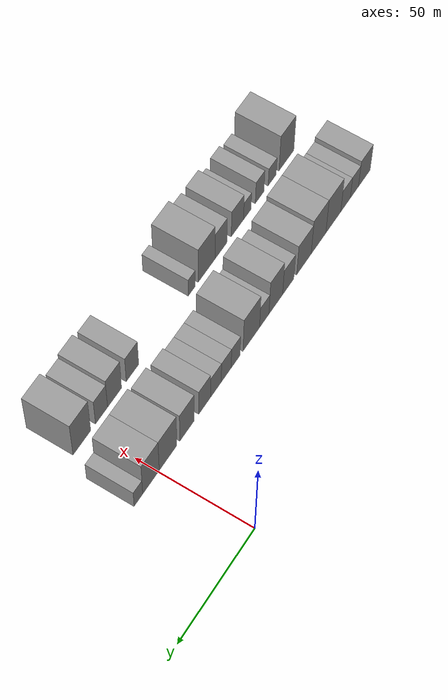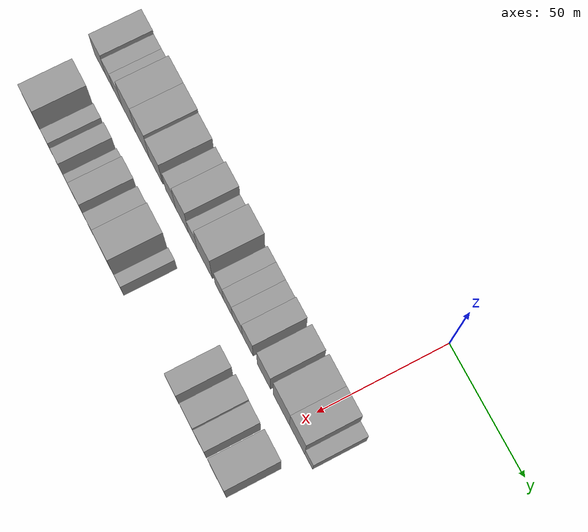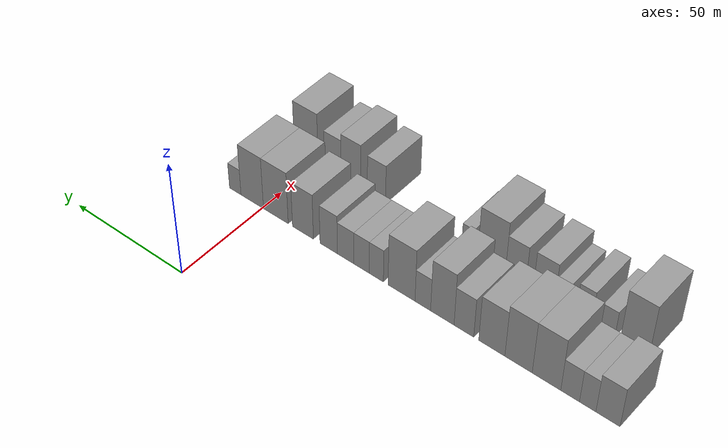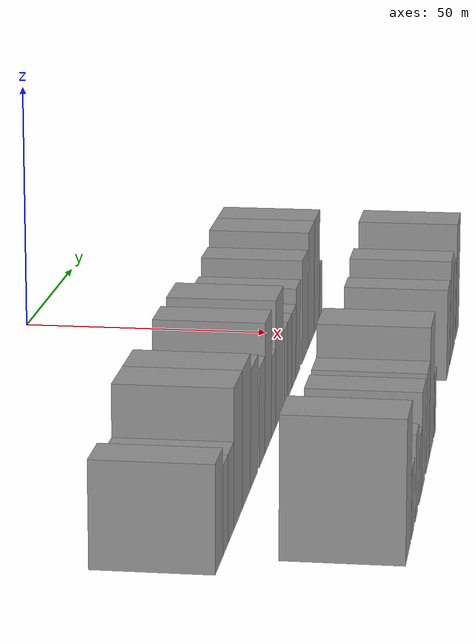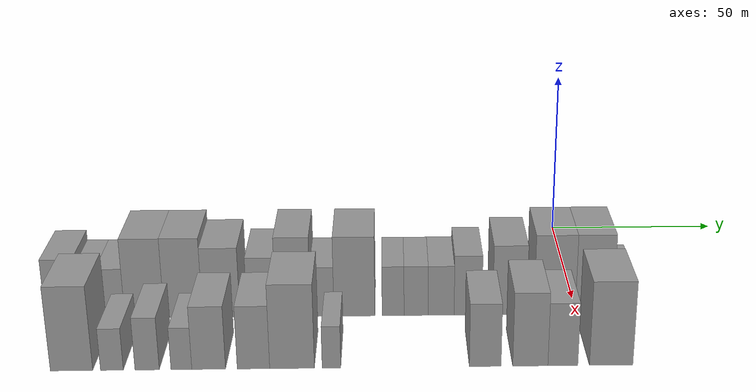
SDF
<sdf version="1.6">
 <world name="default">
  <model name="building_15">
   <static>1</static>
   <pose>50.0000 -143.0563 0 0.000000 0.000000 0.000000</pose>
   <link name="link">
    <pose>0 0 9.00 0 0 0</pose>
    <collision name="collision"><geometry><box><size>20.0000 8.8343 18.0000</size></box></geometry></collision>
    <visual name="visual">
     <cast_shadows>0</cast_shadows>
     <geometry><box><size>20.0000 8.8343 18.0000</size></box></geometry>
     <material>
      <script>
       <uri>model://grey_wall/materials/scripts</uri>
       <uri>model://grey_wall/materials/textures</uri>
       <name>vrc/grey_wall</name>
      </script>
     </material>
    </visual>
   </link>
  </model>
  <model name="building_16">
   <static>1</static>
   <pose>50.0000 -135.6108 0 0.000000 0.000000 0.000000</pose>
   <link name="link">
    <pose>0 0 7.50 0 0 0</pose>
    <collision name="collision"><geometry><box><size>20.0000 6.0568 15.0000</size></box></geometry></collision>
    <visual name="visual">
     <cast_shadows>0</cast_shadows>
     <geometry><box><size>20.0000 6.0568 15.0000</size></box></geometry>
     <material>
      <script>
       <uri>model://grey_wall/materials/scripts</uri>
       <uri>model://grey_wall/materials/textures</uri>
       <name>vrc/grey_wall</name>
      </script>
     </material>
    </visual>
   </link>
  </model>
  <model name="building_17">
   <static>1</static>
   <pose>50.0000 -129.0847 0 0.000000 0.000000 0.000000</pose>
   <link name="link">
    <pose>0 0 7.50 0 0 0</pose>
    <collision name="collision"><geometry><box><size>20.0000 6.9954 15.0000</size></box></geometry></collision>
    <visual name="visual">
     <cast_shadows>0</cast_shadows>
     <geometry><box><size>20.0000 6.9954 15.0000</size></box></geometry>
     <material>
      <script>
       <uri>model://grey_wall/materials/scripts</uri>
       <uri>model://grey_wall/materials/textures</uri>
       <name>vrc/grey_wall</name>
      </script>
     </material>
    </visual>
   </link>
  </model>
  <model name="building_18">
   <static>1</static>
   <pose>50.0000 -120.1459 0 0.000000 0.000000 0.000000</pose>
   <link name="link">
    <pose>0 0 12.00 0 0 0</pose>
    <collision name="collision"><geometry><box><size>20.0000 10.8822 24.0000</size></box></geometry></collision>
    <visual name="visual">
     <cast_shadows>0</cast_shadows>
     <geometry><box><size>20.0000 10.8822 24.0000</size></box></geometry>
     <material>
      <script>
       <uri>model://grey_wall/materials/scripts</uri>
       <uri>model://grey_wall/materials/textures</uri>
       <name>vrc/grey_wall</name>
      </script>
     </material>
    </visual>
   </link>
  </model>
  <model name="building_19">
   <static>1</static>
   <pose>50.0000 -109.3991 0 0.000000 0.000000 0.000000</pose>
   <link name="link">
    <pose>0 0 12.00 0 0 0</pose>
    <collision name="collision"><geometry><box><size>20.0000 10.6114 24.0000</size></box></geometry></collision>
    <visual name="visual">
     <cast_shadows>0</cast_shadows>
     <geometry><box><size>20.0000 10.6114 24.0000</size></box></geometry>
     <material>
      <script>
       <uri>model://grey_wall/materials/scripts</uri>
       <uri>model://grey_wall/materials/textures</uri>
       <name>vrc/grey_wall</name>
      </script>
     </material>
    </visual>
   </link>
  </model>
  <model name="building_20">
   <static>1</static>
   <pose>50.0000 -98.9195 0 0.000000 0.000000 0.000000</pose>
   <link name="link">
    <pose>0 0 10.50 0 0 0</pose>
    <collision name="collision"><geometry><box><size>20.0000 10.3479 21.0000</size></box></geometry></collision>
    <visual name="visual">
     <cast_shadows>0</cast_shadows>
     <geometry><box><size>20.0000 10.3479 21.0000</size></box></geometry>
     <material>
      <script>
       <uri>model://grey_wall/materials/scripts</uri>
       <uri>model://grey_wall/materials/textures</uri>
       <name>vrc/grey_wall</name>
      </script>
     </material>
    </visual>
   </link>
  </model>
  <model name="building_21">
   <static>1</static>
   <pose>50.0000 -87.7739 0 0.000000 0.000000 0.000000</pose>
   <link name="link">
    <pose>0 0 9.00 0 0 0</pose>
    <collision name="collision"><geometry><box><size>20.0000 7.9433 18.0000</size></box></geometry></collision>
    <visual name="visual">
     <cast_shadows>0</cast_shadows>
     <geometry><box><size>20.0000 7.9433 18.0000</size></box></geometry>
     <material>
      <script>
       <uri>model://grey_wall/materials/scripts</uri>
       <uri>model://grey_wall/materials/textures</uri>
       <name>vrc/grey_wall</name>
      </script>
     </material>
    </visual>
   </link>
  </model>
  <model name="building_22">
   <static>1</static>
   <pose>50.0000 -78.9859 0 0.000000 0.000000 0.000000</pose>
   <link name="link">
    <pose>0 0 12.00 0 0 0</pose>
    <collision name="collision"><geometry><box><size>20.0000 9.6326 24.0000</size></box></geometry></collision>
    <visual name="visual">
     <cast_shadows>0</cast_shadows>
     <geometry><box><size>20.0000 9.6326 24.0000</size></box></geometry>
     <material>
      <script>
       <uri>model://grey_wall/materials/scripts</uri>
       <uri>model://grey_wall/materials/textures</uri>
       <name>vrc/grey_wall</name>
      </script>
     </material>
    </visual>
   </link>
  </model>
  <model name="building_23">
   <static>1</static>
   <pose>50.0000 -70.9266 0 0.000000 0.000000 0.000000</pose>
   <link name="link">
    <pose>0 0 7.50 0 0 0</pose>
    <collision name="collision"><geometry><box><size>20.0000 6.4860 15.0000</size></box></geometry></collision>
    <visual name="visual">
     <cast_shadows>0</cast_shadows>
     <geometry><box><size>20.0000 6.4860 15.0000</size></box></geometry>
     <material>
      <script>
       <uri>model://grey_wall/materials/scripts</uri>
       <uri>model://grey_wall/materials/textures</uri>
       <name>vrc/grey_wall</name>
      </script>
     </material>
    </visual>
   </link>
  </model>
  <model name="building_24">
   <static>1</static>
   <pose>50.0000 -61.9832 0 0.000000 0.000000 0.000000</pose>
   <link name="link">
    <pose>0 0 12.00 0 0 0</pose>
    <collision name="collision"><geometry><box><size>20.0000 11.4007 24.0000</size></box></geometry></collision>
    <visual name="visual">
     <cast_shadows>0</cast_shadows>
     <geometry><box><size>20.0000 11.4007 24.0000</size></box></geometry>
     <material>
      <script>
       <uri>model://grey_wall/materials/scripts</uri>
       <uri>model://grey_wall/materials/textures</uri>
       <name>vrc/grey_wall</name>
      </script>
     </material>
    </visual>
   </link>
  </model>
  <model name="building_25">
   <static>1</static>
   <pose>50.0000 -51.2385 0 0.000000 0.000000 0.000000</pose>
   <link name="link">
    <pose>0 0 7.50 0 0 0</pose>
    <collision name="collision"><geometry><box><size>20.0000 6.0887 15.0000</size></box></geometry></collision>
    <visual name="visual">
     <cast_shadows>0</cast_shadows>
     <geometry><box><size>20.0000 6.0887 15.0000</size></box></geometry>
     <material>
      <script>
       <uri>model://grey_wall/materials/scripts</uri>
       <uri>model://grey_wall/materials/textures</uri>
       <name>vrc/grey_wall</name>
      </script>
     </material>
    </visual>
   </link>
  </model>
  <model name="building_26">
   <static>1</static>
   <pose>50.0000 -44.8371 0 0.000000 0.000000 0.000000</pose>
   <link name="link">
    <pose>0 0 7.50 0 0 0</pose>
    <collision name="collision"><geometry><box><size>20.0000 6.7143 15.0000</size></box></geometry></collision>
    <visual name="visual">
     <cast_shadows>0</cast_shadows>
     <geometry><box><size>20.0000 6.7143 15.0000</size></box></geometry>
     <material>
      <script>
       <uri>model://grey_wall/materials/scripts</uri>
       <uri>model://grey_wall/materials/textures</uri>
       <name>vrc/grey_wall</name>
      </script>
     </material>
    </visual>
   </link>
  </model>
  <model name="building_27">
   <static>1</static>
   <pose>50.0000 -37.8603 0 0.000000 0.000000 0.000000</pose>
   <link name="link">
    <pose>0 0 7.50 0 0 0</pose>
    <collision name="collision"><geometry><box><size>20.0000 7.2393 15.0000</size></box></geometry></collision>
    <visual name="visual">
     <cast_shadows>0</cast_shadows>
     <geometry><box><size>20.0000 7.2393 15.0000</size></box></geometry>
     <material>
      <script>
       <uri>model://grey_wall/materials/scripts</uri>
       <uri>model://grey_wall/materials/textures</uri>
       <name>vrc/grey_wall</name>
      </script>
     </material>
    </visual>
   </link>
  </model>
  <model name="building_28">
   <static>1</static>
   <pose>50.0000 -30.3558 0 0.000000 0.000000 0.000000</pose>
   <link name="link">
    <pose>0 0 9.00 0 0 0</pose>
    <collision name="collision"><geometry><box><size>20.0000 7.7696 18.0000</size></box></geometry></collision>
    <visual name="visual">
     <cast_shadows>0</cast_shadows>
     <geometry><box><size>20.0000 7.7696 18.0000</size></box></geometry>
     <material>
      <script>
       <uri>model://grey_wall/materials/scripts</uri>
       <uri>model://grey_wall/materials/textures</uri>
       <name>vrc/grey_wall</name>
      </script>
     </material>
    </visual>
   </link>
  </model>
  <model name="building_29">
   <static>1</static>
   <pose>50.0000 -18.7199 0 0.000000 0.000000 0.000000</pose>
   <link name="link">
    <pose>0 0 10.50 0 0 0</pose>
    <collision name="collision"><geometry><box><size>20.0000 9.5024 21.0000</size></box></geometry></collision>
    <visual name="visual">
     <cast_shadows>0</cast_shadows>
     <geometry><box><size>20.0000 9.5024 21.0000</size></box></geometry>
     <material>
      <script>
       <uri>model://grey_wall/materials/scripts</uri>
       <uri>model://grey_wall/materials/textures</uri>
       <name>vrc/grey_wall</name>
      </script>
     </material>
    </visual>
   </link>
  </model>
  <model name="building_30">
   <static>1</static>
   <pose>50.0000 -6.2122 0 0.000000 0.000000 0.000000</pose>
   <link name="link">
    <pose>0 0 12.00 0 0 0</pose>
    <collision name="collision"><geometry><box><size>20.0000 11.5130 24.0000</size></box></geometry></collision>
    <visual name="visual">
     <cast_shadows>0</cast_shadows>
     <geometry><box><size>20.0000 11.5130 24.0000</size></box></geometry>
     <material>
      <script>
       <uri>model://grey_wall/materials/scripts</uri>
       <uri>model://grey_wall/materials/textures</uri>
       <name>vrc/grey_wall</name>
      </script>
     </material>
    </visual>
   </link>
  </model>
  <model name="building_31">
   <static>1</static>
   <pose>50.0000 4.8688 0 0.000000 0.000000 0.000000</pose>
   <link name="link">
    <pose>0 0 12.00 0 0 0</pose>
    <collision name="collision"><geometry><box><size>20.0000 10.6490 24.0000</size></box></geometry></collision>
    <visual name="visual">
     <cast_shadows>0</cast_shadows>
     <geometry><box><size>20.0000 10.6490 24.0000</size></box></geometry>
     <material>
      <script>
       <uri>model://grey_wall/materials/scripts</uri>
       <uri>model://grey_wall/materials/textures</uri>
       <name>vrc/grey_wall</name>
      </script>
     </material>
    </visual>
   </link>
  </model>
  <model name="building_32">
   <static>1</static>
   <pose>50.0000 12.9377 0 0.000000 0.000000 0.000000</pose>
   <link name="link">
    <pose>0 0 6.00 0 0 0</pose>
    <collision name="collision"><geometry><box><size>20.0000 5.4888 12.0000</size></box></geometry></collision>
    <visual name="visual">
     <cast_shadows>0</cast_shadows>
     <geometry><box><size>20.0000 5.4888 12.0000</size></box></geometry>
     <material>
      <script>
       <uri>model://grey_wall/materials/scripts</uri>
       <uri>model://grey_wall/materials/textures</uri>
       <name>vrc/grey_wall</name>
      </script>
     </material>
    </visual>
   </link>
  </model>
  <model name="building_79">
   <static>1</static>
   <pose>79.0000 -134.0889 0 0.000000 0.000000 0.000000</pose>
   <link name="link">
    <pose>0 0 12.00 0 0 0</pose>
    <collision name="collision"><geometry><box><size>20.0000 10.8545 24.0000</size></box></geometry></collision>
    <visual name="visual">
     <cast_shadows>0</cast_shadows>
     <geometry><box><size>20.0000 10.8545 24.0000</size></box></geometry>
     <material>
      <script>
       <uri>model://grey_wall/materials/scripts</uri>
       <uri>model://grey_wall/materials/textures</uri>
       <name>vrc/grey_wall</name>
      </script>
     </material>
    </visual>
   </link>
  </model>
  <model name="building_80">
   <static>1</static>
   <pose>79.0000 -123.7408 0 0.000000 0.000000 0.000000</pose>
   <link name="link">
    <pose>0 0 6.00 0 0 0</pose>
    <collision name="collision"><geometry><box><size>20.0000 5.8416 12.0000</size></box></geometry></collision>
    <visual name="visual">
     <cast_shadows>0</cast_shadows>
     <geometry><box><size>20.0000 5.8416 12.0000</size></box></geometry>
     <material>
      <script>
       <uri>model://grey_wall/materials/scripts</uri>
       <uri>model://grey_wall/materials/textures</uri>
       <name>vrc/grey_wall</name>
      </script>
     </material>
    </visual>
   </link>
  </model>
  <model name="building_81">
   <static>1</static>
   <pose>79.0000 -114.7056 0 0.000000 0.000000 0.000000</pose>
   <link name="link">
    <pose>0 0 7.50 0 0 0</pose>
    <collision name="collision"><geometry><box><size>20.0000 6.2287 15.0000</size></box></geometry></collision>
    <visual name="visual">
     <cast_shadows>0</cast_shadows>
     <geometry><box><size>20.0000 6.2287 15.0000</size></box></geometry>
     <material>
      <script>
       <uri>model://grey_wall/materials/scripts</uri>
       <uri>model://grey_wall/materials/textures</uri>
       <name>vrc/grey_wall</name>
      </script>
     </material>
    </visual>
   </link>
  </model>
  <model name="building_82">
   <static>1</static>
   <pose>79.0000 -105.9142 0 0.000000 0.000000 0.000000</pose>
   <link name="link">
    <pose>0 0 6.00 0 0 0</pose>
    <collision name="collision"><geometry><box><size>20.0000 5.3541 12.0000</size></box></geometry></collision>
    <visual name="visual">
     <cast_shadows>0</cast_shadows>
     <geometry><box><size>20.0000 5.3541 12.0000</size></box></geometry>
     <material>
      <script>
       <uri>model://grey_wall/materials/scripts</uri>
       <uri>model://grey_wall/materials/textures</uri>
       <name>vrc/grey_wall</name>
      </script>
     </material>
    </visual>
   </link>
  </model>
  <model name="building_83">
   <static>1</static>
   <pose>79.0000 -98.8980 0 0.000000 0.000000 0.000000</pose>
   <link name="link">
    <pose>0 0 9.00 0 0 0</pose>
    <collision name="collision"><geometry><box><size>20.0000 8.6783 18.0000</size></box></geometry></collision>
    <visual name="visual">
     <cast_shadows>0</cast_shadows>
     <geometry><box><size>20.0000 8.6783 18.0000</size></box></geometry>
     <material>
      <script>
       <uri>model://grey_wall/materials/scripts</uri>
       <uri>model://grey_wall/materials/textures</uri>
       <name>vrc/grey_wall</name>
      </script>
     </material>
    </visual>
   </link>
  </model>
  <model name="building_84">
   <static>1</static>
   <pose>79.0000 -87.3843 0 0.000000 0.000000 0.000000</pose>
   <link name="link">
    <pose>0 0 9.00 0 0 0</pose>
    <collision name="collision"><geometry><box><size>20.0000 8.3491 18.0000</size></box></geometry></collision>
    <visual name="visual">
     <cast_shadows>0</cast_shadows>
     <geometry><box><size>20.0000 8.3491 18.0000</size></box></geometry>
     <material>
      <script>
       <uri>model://grey_wall/materials/scripts</uri>
       <uri>model://grey_wall/materials/textures</uri>
       <name>vrc/grey_wall</name>
      </script>
     </material>
    </visual>
   </link>
  </model>
  <model name="building_85">
   <static>1</static>
   <pose>79.0000 -77.4440 0 0.000000 0.000000 0.000000</pose>
   <link name="link">
    <pose>0 0 12.00 0 0 0</pose>
    <collision name="collision"><geometry><box><size>20.0000 11.5315 24.0000</size></box></geometry></collision>
    <visual name="visual">
     <cast_shadows>0</cast_shadows>
     <geometry><box><size>20.0000 11.5315 24.0000</size></box></geometry>
     <material>
      <script>
       <uri>model://grey_wall/materials/scripts</uri>
       <uri>model://grey_wall/materials/textures</uri>
       <name>vrc/grey_wall</name>
      </script>
     </material>
    </visual>
   </link>
  </model>
  <model name="building_86">
   <static>1</static>
   <pose>79.0000 -67.2774 0 0.000000 0.000000 0.000000</pose>
   <link name="link">
    <pose>0 0 6.00 0 0 0</pose>
    <collision name="collision"><geometry><box><size>20.0000 4.8016 12.0000</size></box></geometry></collision>
    <visual name="visual">
     <cast_shadows>0</cast_shadows>
     <geometry><box><size>20.0000 4.8016 12.0000</size></box></geometry>
     <material>
      <script>
       <uri>model://grey_wall/materials/scripts</uri>
       <uri>model://grey_wall/materials/textures</uri>
       <name>vrc/grey_wall</name>
      </script>
     </material>
    </visual>
   </link>
  </model>
  <model name="building_87">
   <static>1</static>
   <pose>79.0000 -27.5234 0 0.000000 0.000000 0.000000</pose>
   <link name="link">
    <pose>0 0 9.00 0 0 0</pose>
    <collision name="collision"><geometry><box><size>20.0000 8.2355 18.0000</size></box></geometry></collision>
    <visual name="visual">
     <cast_shadows>0</cast_shadows>
     <geometry><box><size>20.0000 8.2355 18.0000</size></box></geometry>
     <material>
      <script>
       <uri>model://grey_wall/materials/scripts</uri>
       <uri>model://grey_wall/materials/textures</uri>
       <name>vrc/grey_wall</name>
      </script>
     </material>
    </visual>
   </link>
  </model>
  <model name="building_88">
   <static>1</static>
   <pose>79.0000 -15.8421 0 0.000000 0.000000 0.000000</pose>
   <link name="link">
    <pose>0 0 10.50 0 0 0</pose>
    <collision name="collision"><geometry><box><size>20.0000 9.1270 21.0000</size></box></geometry></collision>
    <visual name="visual">
     <cast_shadows>0</cast_shadows>
     <geometry><box><size>20.0000 9.1270 21.0000</size></box></geometry>
     <material>
      <script>
       <uri>model://grey_wall/materials/scripts</uri>
       <uri>model://grey_wall/materials/textures</uri>
       <name>vrc/grey_wall</name>
      </script>
     </material>
    </visual>
   </link>
  </model>
  <model name="building_89">
   <static>1</static>
   <pose>79.0000 -7.3843 0 0.000000 0.000000 0.000000</pose>
   <link name="link">
    <pose>0 0 9.00 0 0 0</pose>
    <collision name="collision"><geometry><box><size>20.0000 7.7886 18.0000</size></box></geometry></collision>
    <visual name="visual">
     <cast_shadows>0</cast_shadows>
     <geometry><box><size>20.0000 7.7886 18.0000</size></box></geometry>
     <material>
      <script>
       <uri>model://grey_wall/materials/scripts</uri>
       <uri>model://grey_wall/materials/textures</uri>
       <name>vrc/grey_wall</name>
      </script>
     </material>
    </visual>
   </link>
  </model>
  <model name="building_90">
   <static>1</static>
   <pose>79.0000 5.1599 0 0.000000 0.000000 0.000000</pose>
   <link name="link">
    <pose>0 0 12.00 0 0 0</pose>
    <collision name="collision"><geometry><box><size>20.0000 11.2997 24.0000</size></box></geometry></collision>
    <visual name="visual">
     <cast_shadows>0</cast_shadows>
     <geometry><box><size>20.0000 11.2997 24.0000</size></box></geometry>
     <material>
      <script>
       <uri>model://grey_wall/materials/scripts</uri>
       <uri>model://grey_wall/materials/textures</uri>
       <name>vrc/grey_wall</name>
      </script>
     </material>
    </visual>
   </link>
  </model>
 </world>
</sdf>
